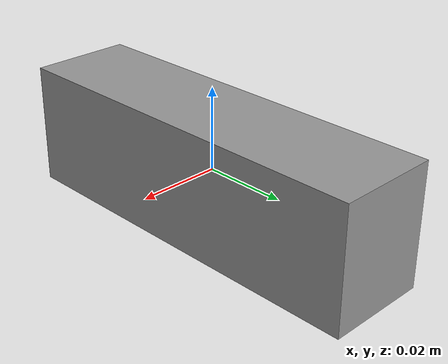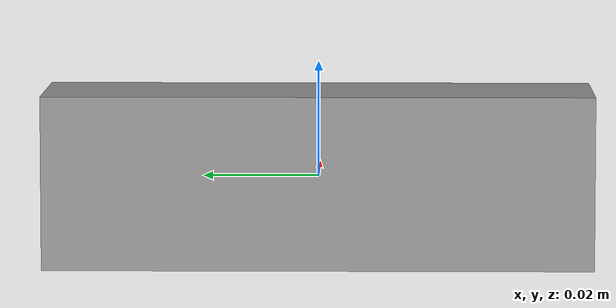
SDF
<?xml version="1.0" ?>

<sdf version="1.6">
  <model name="depth_camera">
    <link name="link_depth_camera">
      <inertial>
        <mass>0.0052875</mass>
        <inertia>
          <ixx>4.1e-07</ixx>
          <ixy>0</ixy>
          <ixz>0</ixz>
          <iyy>7.9e-07</iyy>
          <iyz>0</iyz>
          <izz>4.1e-07</izz>
        </inertia>
        <pose frame=''>0 0 0 0 -0 0</pose>
      </inertial>
      <pose frame=''>0 0 0 0 -0 0</pose>
      <gravity>1</gravity>
      <self_collide>0</self_collide>
      <kinematic>0</kinematic>
      <enable_wind>0</enable_wind>
      <visual name='visual'>
        <pose frame=''>0 0 0 0 -0 0</pose>
        <geometry>
          <box>
            <size>0.025 0.095 0.03</size>
          </box>
        </geometry>
        <material>
          <lighting>1</lighting>
          <script>
            <uri>file://media/materials/scripts/gazebo.material</uri>
            <name>Gazebo/Grey</name>
          </script>
          <shader type='vertex'>
            <normal_map>__default__</normal_map>
          </shader>
          <ambient>0.3 0.3 0.3 1</ambient>
          <diffuse>0.7 0.7 0.7 1</diffuse>
          <specular>0.01 0.01 0.01 1</specular>
          <emissive>0 0 0 1</emissive>
        </material>
        <transparency>0</transparency>
        <cast_shadows>1</cast_shadows>
      </visual>
      <collision name='collision'>
        <laser_retro>0</laser_retro>
        <max_contacts>10</max_contacts>
        <pose frame=''>0 0 0 0 -0 0</pose>
        <geometry>
          <box>
            <size>0.025 0.095 0.03</size>
          </box>
        </geometry>
        <surface>
          <friction>
            <ode>
              <mu>1</mu>
              <mu2>1</mu2>
              <fdir1>0 0 0</fdir1>
              <slip1>0</slip1>
              <slip2>0</slip2>
            </ode>
            <torsional>
              <coefficient>1</coefficient>
              <patch_radius>0</patch_radius>
              <surface_radius>0</surface_radius>
              <use_patch_radius>1</use_patch_radius>
              <ode>
                <slip>0</slip>
              </ode>
            </torsional>
          </friction>
          <bounce>
            <restitution_coefficient>0</restitution_coefficient>
            <threshold>1e+06</threshold>
          </bounce>
          <contact>
            <collide_without_contact>0</collide_without_contact>
            <collide_without_contact_bitmask>1</collide_without_contact_bitmask>
            <collide_bitmask>1</collide_bitmask>
            <ode>
              <soft_cfm>0</soft_cfm>
              <soft_erp>0.2</soft_erp>
              <kp>1e+13</kp>
              <kd>1</kd>
              <max_vel>0.01</max_vel>
              <min_depth>0</min_depth>
            </ode>
            <bullet>
              <split_impulse>1</split_impulse>
              <split_impulse_penetration_threshold>-0.01</split_impulse_penetration_threshold>
              <soft_cfm>0</soft_cfm>
              <soft_erp>0.2</soft_erp>
              <kp>1e+13</kp>
              <kd>1</kd>
            </bullet>
          </contact>
        </surface>
      </collision>
      <sensor type="depth" name="depth_camera">
        <update_rate>20</update_rate>
        <camera name="head_depth">
          <horizontal_fov>1.2</horizontal_fov>
          <image>
              <width>640</width>
              <height>480</height>
              <format>R8G8B8</format>
          </image>
          <clip>
              <near>0.05</near>
              <far>3</far>
          </clip>
        </camera>
        <plugin name="depth_camera_controller" filename="libgazebo_ros_openni_kinect.so">
          <baseline>0.2</baseline>
          <alwaysOn>true</alwaysOn>
          <updateRate>1.0</updateRate>
          <imageTopicName>color_image_raw</imageTopicName>
          <cameraInfoTopicName>color_camera_info</cameraInfoTopicName>
          <depthImageTopicName>depth_image_raw</depthImageTopicName>
          <depthImageInfoTopicName>depth_camera_info</depthImageInfoTopicName>
          <pointCloudTopicName>points</pointCloudTopicName>
          <pointCloudCutoff>0.5</pointCloudCutoff>
          <pointCloudCutoffMax>3.0</pointCloudCutoffMax>
          <frameName>link_depth_camera</frameName>
          <hackBaseline>0.0</hackBaseline>
          <distortionK1>0.0</distortionK1>
          <distortionK2>0.0</distortionK2>
          <distortionK3>0.0</distortionK3>
          <distortionT1>0.0</distortionT1>
          <distortionT2>0.0</distortionT2>
          <robotNamespace></robotNamespace>
        </plugin>
      </sensor>
    </link>
  </model>
</sdf>
